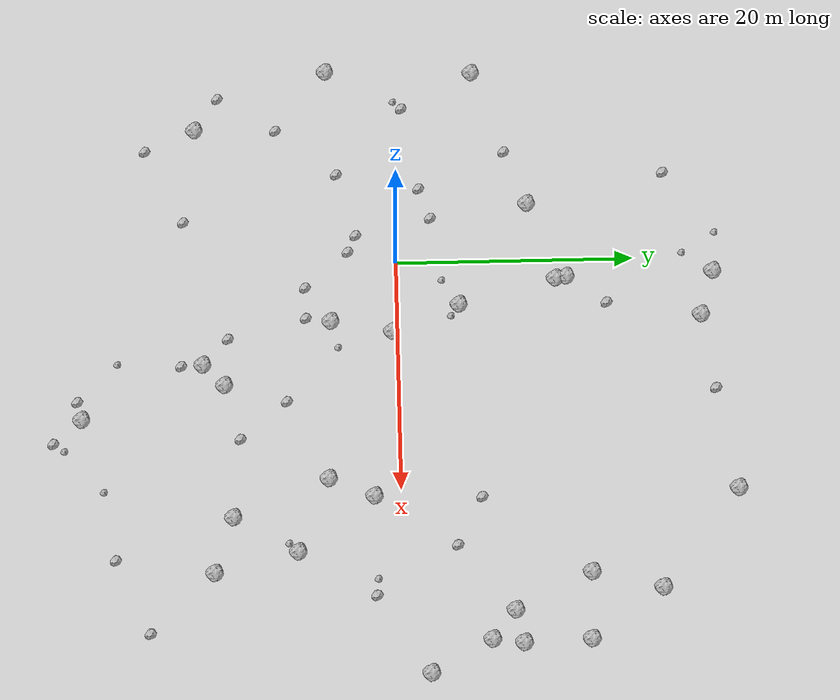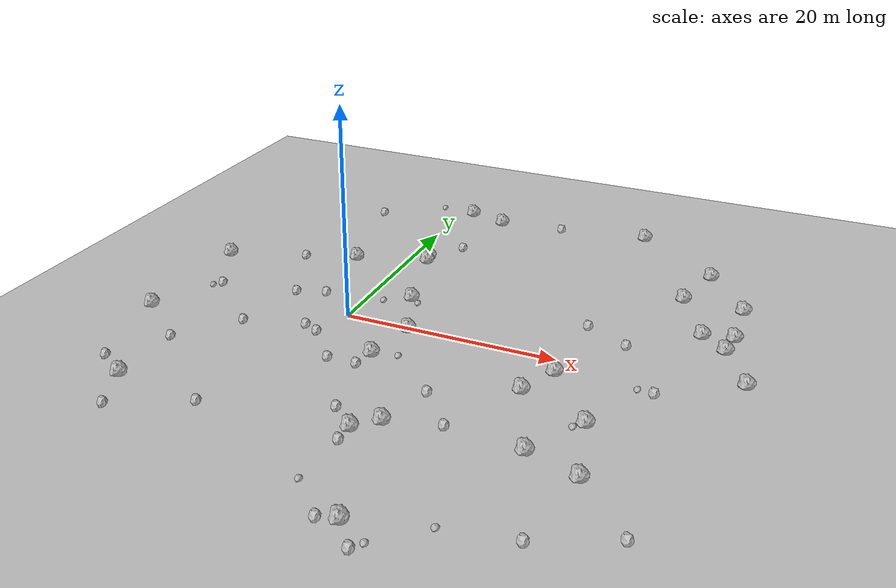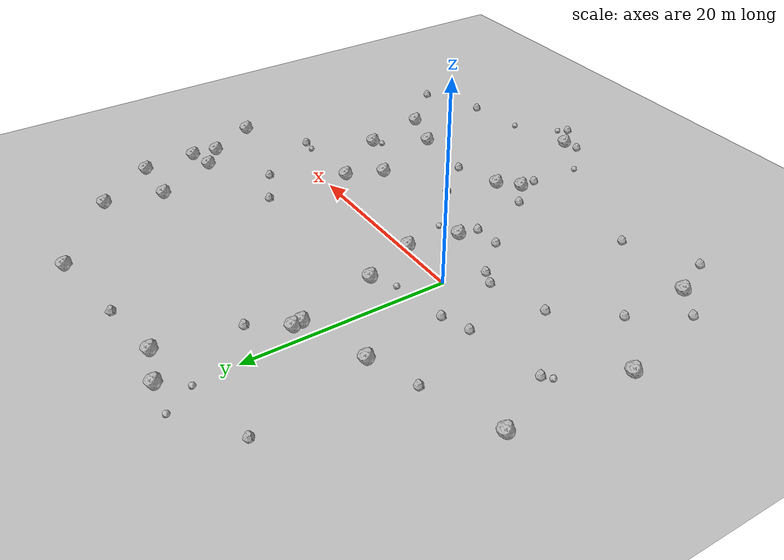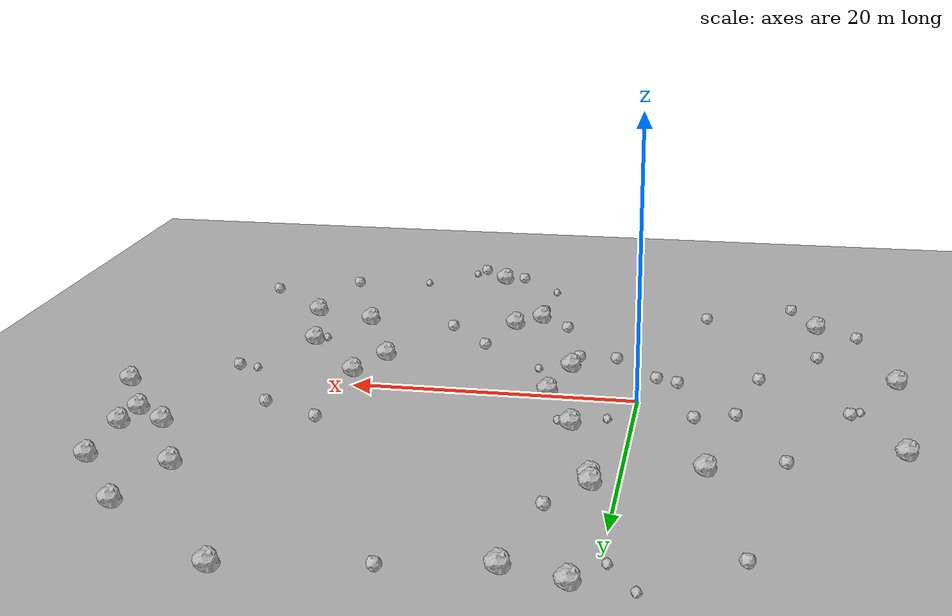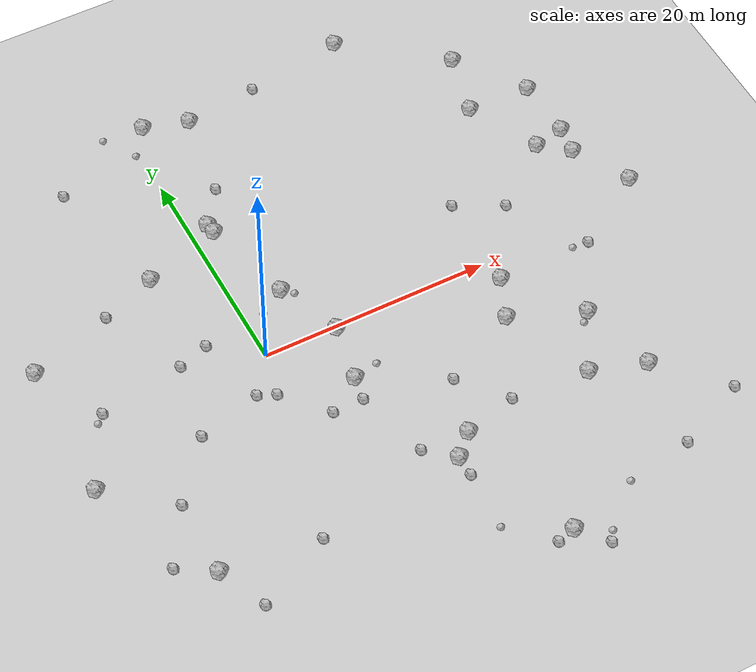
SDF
<sdf version="1.6">
 <world name="default">
  <include><uri>model://custom_ground</uri></include>
  <include><uri>model://sun</uri></include>
  <model name="rock1_0_0">
   <include><uri>model://rock1</uri><pose>10.76480044773539 -14.519050787894962 0.5 0 0 0</pose></include>
  </model>
  <model name="rock1_0_1">
   <include><uri>model://rock1</uri><pose>33.06195836401563 15.10946747772708 0.5 0 0 0</pose></include>
  </model>
  <model name="rock1_0_2">
   <include><uri>model://rock1</uri><pose>27.465079796704337 15.352225509414403 0.5 0 0 0</pose></include>
  </model>
  <model name="rock1_0_3">
   <include><uri>model://rock1</uri><pose>-17.648139051792754 -5.763978912970643 0.5 0 0 0</pose></include>
  </model>
  <model name="rock1_0_4">
   <include><uri>model://rock1</uri><pose>4.004186913027482 5.181848694438344 0.5 0 0 0</pose></include>
  </model>
  <model name="rock1_0_5">
   <include><uri>model://rock1</uri><pose>5.281465425138222 -5.597697707395589 0.5 0 0 0</pose></include>
  </model>
  <model name="rock1_0_6">
   <include><uri>model://rock1</uri><pose>25.256505618556943 -8.526130929072284 0.5 0 0 0</pose></include>
  </model>
  <model name="rock1_0_7">
   <include><uri>model://rock1</uri><pose>6.28953347170847 -0.4491067981379224 0.5 0 0 0</pose></include>
  </model>
  <model name="rock1_0_8">
   <include><uri>model://rock1</uri><pose>5.343381617421496 25.46748570395969 0.5 0 0 0</pose></include>
  </model>
  <model name="rock1_0_9">
   <include><uri>model://rock1</uri><pose>32.92392941730082 7.078824714255454 0.5 0 0 0</pose></include>
  </model>
  <model name="rock1_0_10">
   <include><uri>model://rock1</uri><pose>13.534564122198304 -26.355131266129057 0.5 0 0 0</pose></include>
  </model>
  <model name="rock1_0_11">
   <include><uri>model://rock1</uri><pose>28.892895212160617 21.10209977792256 0.5 0 0 0</pose></include>
  </model>
  <model name="rock1_0_12">
   <include><uri>model://rock1</uri><pose>26.906854882433116 -15.35020655182681 0.5 0 0 0</pose></include>
  </model>
  <model name="rock1_0_13">
   <include><uri>model://rock1</uri><pose>1.6873552517129617 14.263144841194027 0.5 0 0 0</pose></include>
  </model>
  <model name="rock1_0_14">
   <include><uri>model://rock1</uri><pose>1.8402296443715898 13.353641620052798 0.5 0 0 0</pose></include>
  </model>
  <model name="rock1_0_15">
   <include><uri>model://rock1</uri><pose>33.247907862744974 9.6299312936914 0.5 0 0 0</pose></include>
  </model>
  <model name="rock1_0_16">
   <include><uri>model://rock1</uri><pose>-17.293870249602538 6.8260220396823215 0.5 0 0 0</pose></include>
  </model>
  <model name="rock1_0_17">
   <include><uri>model://rock1</uri><pose>-5.006994627908041 11.18572720541487 0.5 0 0 0</pose></include>
  </model>
  <model name="rock1_0_18">
   <include><uri>model://rock1</uri><pose>20.605254216031817 27.73025578181509 0.5 0 0 0</pose></include>
  </model>
  <model name="rock1_0_19">
   <include><uri>model://rock1</uri><pose>35.592591728686536 2.0867974107488294 0.5 0 0 0</pose></include>
  </model>
  <model name="rock1_0_20">
   <include><uri>model://rock1</uri><pose>19.06015952909906 -5.9457298503283305 0.5 0 0 0</pose></include>
  </model>
  <model name="rock1_0_21">
   <include><uri>model://rock1</uri><pose>22.22339008630776 -13.81875291814626 0.5 0 0 0</pose></include>
  </model>
  <model name="rock1_0_22">
   <include><uri>model://rock1</uri><pose>-12.399637148103482 -17.038074408096627 0.5 0 0 0</pose></include>
  </model>
  <model name="rock1_0_23">
   <include><uri>model://rock1</uri><pose>8.929878219109668 -16.33080700918807 0.5 0 0 0</pose></include>
  </model>
  <model name="rock1_0_24">
   <include><uri>model://rock1</uri><pose>30.52635070297191 9.029674905241798 0.5 0 0 0</pose></include>
  </model>
  <model name="rock1_0_25">
   <include><uri>model://rock1</uri><pose>1.466350454593261 26.64638450726079 0.5 0 0 0</pose></include>
  </model>
  <model name="rock1_0_26">
   <include><uri>model://rock1</uri><pose>20.63441514956348 -2.219276297537011 0.5 0 0 0</pose></include>
  </model>
  <model name="rock2_0_0">
   <include><uri>model://rock2</uri><pose>3.9971496518919665 17.629929796145944 0.3 0 0 0</pose></include>
  </model>
  <model name="rock2_0_1">
   <include><uri>model://rock2</uri><pose>-9.9184758159727 9.434451177755406 0.3 0 0 0</pose></include>
  </model>
  <model name="rock2_0_2">
   <include><uri>model://rock2</uri><pose>15.504072479837944 -28.662854472520813 0.3 0 0 0</pose></include>
  </model>
  <model name="rock2_0_3">
   <include><uri>model://rock2</uri><pose>4.880004541024952 -7.658455418965254 0.3 0 0 0</pose></include>
  </model>
  <model name="rock2_0_4">
   <include><uri>model://rock2</uri><pose>15.426547392572083 -13.191846854689967 0.3 0 0 0</pose></include>
  </model>
  <model name="rock2_0_5">
   <include><uri>model://rock2</uri><pose>11.893351672653274 -26.722562229363408 0.3 0 0 0</pose></include>
  </model>
  <model name="rock2_0_6">
   <include><uri>model://rock2</uri><pose>6.594915837441679 -14.198509369171017 0.3 0 0 0</pose></include>
  </model>
  <model name="rock2_0_7">
   <include><uri>model://rock2</uri><pose>-15.414205866011317 -15.053569442249588 0.3 0 0 0</pose></include>
  </model>
  <model name="rock2_0_8">
   <include><uri>model://rock2</uri><pose>12.2201927708794 -9.313241756440128 0.3 0 0 0</pose></include>
  </model>
  <model name="rock2_0_9">
   <include><uri>model://rock2</uri><pose>24.881989781849512 4.536305210756673 0.3 0 0 0</pose></include>
  </model>
  <model name="rock2_0_10">
   <include><uri>model://rock2</uri><pose>-1.0045290857521252 -4.04800102653509 0.3 0 0 0</pose></include>
  </model>
  <model name="rock2_0_11">
   <include><uri>model://rock2</uri><pose>-12.317482771388931 -10.083883414678464 0.3 0 0 0</pose></include>
  </model>
  <model name="rock2_0_12">
   <include><uri>model://rock2</uri><pose>20.819505978926728 6.643690234724083 0.3 0 0 0</pose></include>
  </model>
  <model name="rock2_0_13">
   <include><uri>model://rock2</uri><pose>2.1493983516480526 -7.693854924969756 0.3 0 0 0</pose></include>
  </model>
  <model name="rock2_0_14">
   <include><uri>model://rock2</uri><pose>8.9254618442769 -18.097358367074136 0.3 0 0 0</pose></include>
  </model>
  <model name="rock2_0_15">
   <include><uri>model://rock2</uri><pose>-3.9452020760789672 3.0030816398988804 0.3 0 0 0</pose></include>
  </model>
  <model name="rock2_0_16">
   <include><uri>model://rock2</uri><pose>-7.726767510473442 22.91676300377741 0.3 0 0 0</pose></include>
  </model>
  <model name="rock2_0_17">
   <include><uri>model://rock2</uri><pose>-8.127993326845587 -4.919230912190159 0.3 0 0 0</pose></include>
  </model>
  <model name="rock2_0_18">
   <include><uri>model://rock2</uri><pose>11.803191258767363 26.402122513161125 0.3 0 0 0</pose></include>
  </model>
  <model name="rock2_0_19">
   <include><uri>model://rock2</uri><pose>-10.606624124302241 -21.25812503293311 0.3 0 0 0</pose></include>
  </model>
  <model name="rock2_0_20">
   <include><uri>model://rock2</uri><pose>25.601927659471542 -23.40298627604137 0.3 0 0 0</pose></include>
  </model>
  <model name="rock2_0_21">
   <include><uri>model://rock2</uri><pose>-2.5028324402574675 -3.3641615754239957 0.3 0 0 0</pose></include>
  </model>
  <model name="rock2_0_22">
   <include><uri>model://rock2</uri><pose>-14.159583992110766 0.7649787375658619 0.3 0 0 0</pose></include>
  </model>
  <model name="rock2_0_23">
   <include><uri>model://rock2</uri><pose>-6.669750528480234 2.0750016211739606 0.3 0 0 0</pose></include>
  </model>
  <model name="rock2_0_24">
   <include><uri>model://rock2</uri><pose>28.995577222422583 -2.1431506447855284 0.3 0 0 0</pose></include>
  </model>
  <model name="rock2_0_25">
   <include><uri>model://rock2</uri><pose>31.807285157436446 -20.520212351991603 0.3 0 0 0</pose></include>
  </model>
  <model name="rock2_0_26">
   <include><uri>model://rock2</uri><pose>-4.010760015110915 -17.96552164876872 0.3 0 0 0</pose></include>
  </model>
  <model name="rock3_0_0">
   <include><uri>model://rock3</uri><pose>19.730600775409997 -24.472040896494455 0.2 0 0 0</pose></include>
  </model>
  <model name="rock3_0_1">
   <include><uri>model://rock3</uri><pose>-0.3932560864076393 24.15078962738123 0.2 0 0 0</pose></include>
  </model>
  <model name="rock3_0_2">
   <include><uri>model://rock3</uri><pose>1.6611682361568896 3.7903401391874 0.2 0 0 0</pose></include>
  </model>
  <model name="rock3_0_3">
   <include><uri>model://rock3</uri><pose>-14.870930253772205 0.02851800202243382 0.2 0 0 0</pose></include>
  </model>
  <model name="rock3_0_4">
   <include><uri>model://rock3</uri><pose>4.876596891249193 4.504791862343524 0.2 0 0 0</pose></include>
  </model>
  <model name="rock3_0_5">
   <include><uri>model://rock3</uri><pose>7.491186232174179 -5.0129384632247636 0.2 0 0 0</pose></include>
  </model>
  <model name="rock3_0_6">
   <include><uri>model://rock3</uri><pose>-2.1803870333658466 27.014733961610276 0.2 0 0 0</pose></include>
  </model>
  <model name="rock3_0_7">
   <include><uri>model://rock3</uri><pose>27.573766047684437 -2.0397790989269566 0.2 0 0 0</pose></include>
  </model>
  <model name="rock3_0_8">
   <include><uri>model://rock3</uri><pose>16.134466904389953 -27.775506199466754 0.2 0 0 0</pose></include>
  </model>
  <model name="rock3_0_9">
   <include><uri>model://rock3</uri><pose>8.619025555847944 -23.47108161908018 0.2 0 0 0</pose></include>
  </model>
  <model name="rock3_0_10">
   <include><uri>model://rock3</uri><pose>24.424046558823626 -9.280820546685295 0.2 0 0 0</pose></include>
  </model>
 </world>
</sdf>
